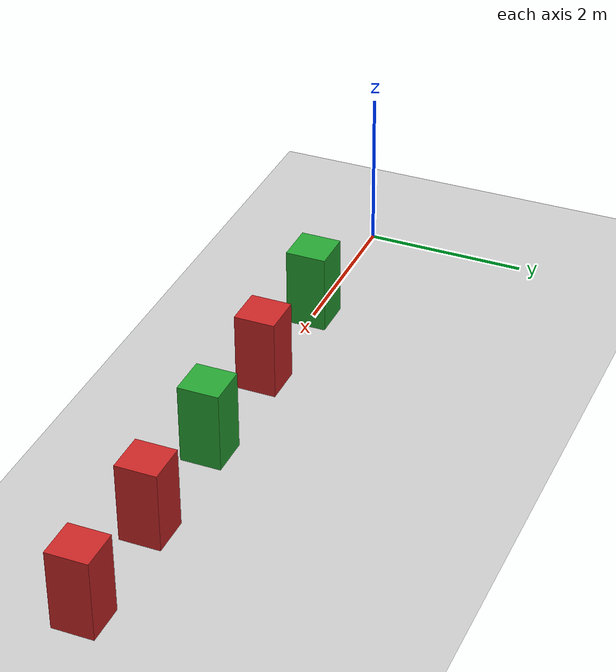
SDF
<?xml version="1.0" ?>
<sdf version="1.6">
  <world name="contact_classification_test">

    <!-- Physics -->
    <physics type="ode">
      <real_time_update_rate>1000</real_time_update_rate>
      <max_step_size>0.001</max_step_size>
      <real_time_factor>1</real_time_factor>
      <ode>
        <solver>
          <type>quick</type>
          <iters>50</iters>
          <sor>1.3</sor>
        </solver>
        <constraints>
          <cfm>0</cfm>
          <erp>0.2</erp>
          <contact_max_correcting_vel>100</contact_max_correcting_vel>
          <contact_surface_layer>0.001</contact_surface_layer>
        </constraints>
      </ode>
    </physics>

    <!-- Sun -->
    <light name="sun" type="directional">
      <cast_shadows>true</cast_shadows>
      <pose>0 0 10 0 0 0</pose>
      <diffuse>0.8 0.8 0.8 1</diffuse>
      <specular>0.2 0.2 0.2 1</specular>
      <direction>-0.5 0.1 -0.9</direction>
    </light>

    <!-- Ground Plane -->
    <model name="ground_plane">
      <static>true</static>
      <link name="link">
        <collision name="collision">
          <geometry>
            <plane>
              <normal>0 0 1</normal>
              <size>100 100</size>
            </plane>
          </geometry>
          <surface>
            <friction>
              <ode>
                <mu>1</mu>
                <mu2>1</mu2>
              </ode>
            </friction>
          </surface>
        </collision>
        <visual name="visual">
          <cast_shadows>false</cast_shadows>
          <geometry>
            <plane>
              <normal>0 0 1</normal>
              <size>100 100</size>
            </plane>
          </geometry>
          <material>
            <script>
              <uri>file://media/materials/scripts/gazebo.material</uri>
              <name>Gazebo/Grey</name>
            </script>
          </material>
        </visual>
      </link>
    </model>

    <!-- ── LIGHT CUBE 1 — x=2.0, 30 kg, GREEN ─────────────────────────── -->
    <!-- Mass raised from 5→30 kg: 5 kg at mu=0.05 produces only ~2.5 N friction,
         below the 15 N fx threshold. 30 kg gives ~29 N — detectable and still
         pushable by ANYmal at probe speed. -->
    <model name="cube_light_1">   <!-- 30 kg, μ=0.05 → friction ≈ 14.7 N > 10 N fx threshold -->
      <pose>2.0 0 0.5 0 0 0</pose>
      <link name="link">
        <inertial>
          <mass>5.0</mass>
          <!-- Solid box 0.5×0.5×1.0 m: Ixx=Iyy=m/12*(0.25+1.0), Izz=m/12*(0.25+0.25) -->
          <inertia>
            <ixx>3.125</ixx>
            <ixy>0</ixy>
            <ixz>0</ixz>
            <iyy>3.125</iyy>
            <iyz>0</iyz>
            <izz>1.25</izz>
          </inertia>
        </inertial>
        <collision name="collision">
          <geometry>
            <box><size>0.5 0.5 1.0</size></box>
          </geometry>
          <surface>
            <friction>
              <ode>
                <mu>0.05</mu>
                <mu2>0.05</mu2>
              </ode>
            </friction>
          </surface>
        </collision>
        <visual name="visual">
          <geometry>
            <box><size>0.5 0.5 1.0</size></box>
          </geometry>
          <material>
            <script>
              <uri>file://media/materials/scripts/gazebo.material</uri>
              <name>Gazebo/Green</name>
            </script>
          </material>
        </visual>
      </link>
    </model>

    <!-- ── HEAVY CUBE 1 — x=3.5, 200 kg, RED ─────────────────────────── -->
    <model name="cube_heavy_1">
      <pose>3.5 0 0.5 0 0 0</pose>
      <link name="link">
        <inertial>
          <mass>200.0</mass>
          <inertia>
            <ixx>20.8333</ixx>
            <ixy>0</ixy>
            <ixz>0</ixz>
            <iyy>20.8333</iyy>
            <iyz>0</iyz>
            <izz>8.3333</izz>
          </inertia>
        </inertial>
        <collision name="collision">
          <geometry>
            <box><size>0.5 0.5 1.0</size></box>
          </geometry>
          <surface>
            <friction>
              <ode>
                <mu>0.8</mu>
                <mu2>0.8</mu2>
              </ode>
            </friction>
          </surface>
        </collision>
        <visual name="visual">
          <geometry>
            <box><size>0.5 0.5 1.0</size></box>
          </geometry>
          <material>
            <script>
              <uri>file://media/materials/scripts/gazebo.material</uri>
              <name>Gazebo/Red</name>
            </script>
          </material>
        </visual>
      </link>
    </model>

    <!-- ── LIGHT CUBE 2 — x=5.0, 30 kg, GREEN ─────────────────────────── -->
    <model name="cube_light_2">
      <pose>5.0 0 0.5 0 0 0</pose>
      <link name="link">
        <inertial>
          <mass>5.0</mass>
          <inertia>
            <ixx>3.125</ixx>
            <ixy>0</ixy>
            <ixz>0</ixz>
            <iyy>3.125</iyy>
            <iyz>0</iyz>
            <izz>1.25</izz>
          </inertia>
        </inertial>
        <collision name="collision">
          <geometry>
            <box><size>0.5 0.5 1.0</size></box>
          </geometry>
          <surface>
            <friction>
              <ode>
                <mu>0.05</mu>
                <mu2>0.05</mu2>
              </ode>
            </friction>
          </surface>
        </collision>
        <visual name="visual">
          <geometry>
            <box><size>0.5 0.5 1.0</size></box>
          </geometry>
          <material>
            <script>
              <uri>file://media/materials/scripts/gazebo.material</uri>
              <name>Gazebo/Green</name>
            </script>
          </material>
        </visual>
      </link>
    </model>

    <!-- ── HEAVY CUBE 2 — x=6.5, 200 kg, RED ─────────────────────────── -->
    <model name="cube_heavy_2">
      <pose>6.5 0 0.5 0 0 0</pose>
      <link name="link">
        <inertial>
          <mass>200.0</mass>
          <inertia>
            <ixx>20.8333</ixx>
            <ixy>0</ixy>
            <ixz>0</ixz>
            <iyy>20.8333</iyy>
            <iyz>0</iyz>
            <izz>8.3333</izz>
          </inertia>
        </inertial>
        <collision name="collision">
          <geometry>
            <box><size>0.5 0.5 1.0</size></box>
          </geometry>
          <surface>
            <friction>
              <ode>
                <mu>0.8</mu>
                <mu2>0.8</mu2>
              </ode>
            </friction>
          </surface>
        </collision>
        <visual name="visual">
          <geometry>
            <box><size>0.5 0.5 1.0</size></box>
          </geometry>
          <material>
            <script>
              <uri>file://media/materials/scripts/gazebo.material</uri>
              <name>Gazebo/Red</name>
            </script>
          </material>
        </visual>
      </link>
    </model>

    <!-- ── HEAVY CUBE 3 — x=8.0, 200 kg, RED ─────────────────────────── -->
    <model name="cube_heavy_3">
      <pose>8.0 0 0.5 0 0 0</pose>
      <link name="link">
        <inertial>
          <mass>200.0</mass>
          <inertia>
            <ixx>20.8333</ixx>
            <ixy>0</ixy>
            <ixz>0</ixz>
            <iyy>20.8333</iyy>
            <iyz>0</iyz>
            <izz>8.3333</izz>
          </inertia>
        </inertial>
        <collision name="collision">
          <geometry>
            <box><size>0.5 0.5 1.0</size></box>
          </geometry>
          <surface>
            <friction>
              <ode>
                <mu>0.8</mu>
                <mu2>0.8</mu2>
              </ode>
            </friction>
          </surface>
        </collision>
        <visual name="visual">
          <geometry>
            <box><size>0.5 0.5 1.0</size></box>
          </geometry>
          <material>
            <script>
              <uri>file://media/materials/scripts/gazebo.material</uri>
              <name>Gazebo/Red</name>
            </script>
          </material>
        </visual>
      </link>
    </model>

    <!-- Scene settings -->
    <scene>
      <ambient>0.4 0.4 0.4 1</ambient>
      <background>0.7 0.7 0.7 1</background>
      <shadows>true</shadows>
    </scene>

    <!-- Initial camera — looking along +X from the side -->
    <gui fullscreen="0">
      <camera name="user_camera">
        <pose>5 -8 3 0 0.3 1.57</pose>
        <view_controller>orbit</view_controller>
      </camera>
    </gui>

  </world>
</sdf>
